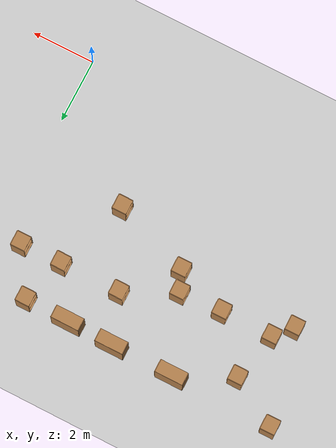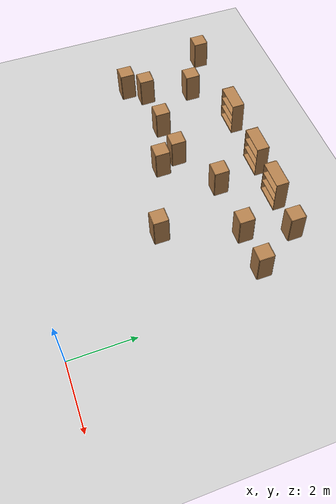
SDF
<sdf version="1.6">
 <world name="default">
  <model name="ground_plane">
   <static>1</static>
   <link name="link">
    <collision name="collision">
     <geometry><plane><normal>0 0 1</normal><size>100 100</size></plane></geometry>
     <surface><friction><ode><mu>100</mu><mu2>50</mu2></ode></friction></surface>
    </collision>
    <visual name="visual">
     <cast_shadows>0</cast_shadows>
     <geometry><plane><normal>0 0 1</normal><size>100 100</size></plane></geometry>
     <material>
      <script><uri>file://media/materials/scripts/gazebo.material</uri><name>Gazebo/Grey</name></script>
     </material>
    </visual>
   </link>
  </model>
  <model name="cabinet_46">
   <static>1</static>
   <link name="cabinet_bottom_plate">
    <inertial>
     <pose>0 0 -1 0 -0 0</pose>
     <inertia><ixx>2.05</ixx><ixy>0</ixy><ixz>0</ixz><iyy>2.05</iyy><iyz>0</iyz><izz>2.05</izz></inertia>
     <mass>25</mass>
    </inertial>
    <collision name="cabinet_bottom_plate_geom">
     <pose>0 0 0.01 0 -0 0</pose>
     <geometry><box><size>0.45 0.45 0.02</size></box></geometry>
    </collision>
    <visual name="cabinet_bottom_plate_geom_visual">
     <pose>0 0 0.01 0 -0 0</pose>
     <geometry><box><size>0.45 0.45 0.02</size></box></geometry>
     <material>
      <script><uri>file://media/materials/scripts/gazebo.material</uri><name>Gazebo/Wood</name></script>
     </material>
    </visual>
    <collision name="cabinet_bottom_plate_geom_cabinet_back_plate">
     <pose>0.235 0 0.51 0 -0 0</pose>
     <geometry><box><size>0.02 0.45 1.02</size></box></geometry>
    </collision>
    <visual name="cabinet_bottom_plate_geom_cabinet_back_plate_visual">
     <pose>0.235 0 0.51 0 -0 0</pose>
     <geometry><box><size>0.02 0.45 1.02</size></box></geometry>
     <material>
      <script><uri>file://media/materials/scripts/gazebo.material</uri><name>Gazebo/Wood</name></script>
     </material>
    </visual>
    <collision name="cabinet_bottom_plate_geom_cabinet_left_plate">
     <pose>0 0.235 0.51 0 -0 0</pose>
     <geometry><box><size>0.45 0.02 1.02</size></box></geometry>
    </collision>
    <visual name="cabinet_bottom_plate_geom_cabinet_left_plate_visual">
     <pose>0 0.235 0.51 0 -0 0</pose>
     <geometry><box><size>0.45 0.02 1.02</size></box></geometry>
     <material>
      <script><uri>file://media/materials/scripts/gazebo.material</uri><name>Gazebo/Wood</name></script>
     </material>
    </visual>
    <collision name="cabinet_bottom_plate_geom_cabinet_middle_plate">
     <pose>0 0 0.51 0 -0 0</pose>
     <geometry><box><size>0.45 0.45 0.02</size></box></geometry>
    </collision>
    <visual name="cabinet_bottom_plate_geom_cabinet_middle_plate_visual">
     <pose>0 0 0.51 0 -0 0</pose>
     <geometry><box><size>0.45 0.45 0.02</size></box></geometry>
     <material>
      <script><uri>file://media/materials/scripts/gazebo.material</uri><name>Gazebo/Wood</name></script>
     </material>
    </visual>
    <collision name="cabinet_bottom_plate_geom_cabinet_right_plate">
     <pose>0 -0.235 0.51 0 -0 0</pose>
     <geometry><box><size>0.45 0.02 1.02</size></box></geometry>
    </collision>
    <visual name="cabinet_bottom_plate_geom_cabinet_right_plate_visual">
     <pose>0 -0.235 0.51 0 -0 0</pose>
     <geometry><box><size>0.45 0.02 1.02</size></box></geometry>
     <material>
      <script><uri>file://media/materials/scripts/gazebo.material</uri><name>Gazebo/Wood</name></script>
     </material>
    </visual>
    <collision name="cabinet_bottom_plate_geom_cabinet_top_plate">
     <pose>0 0 1.01 0 -0 0</pose>
     <geometry><box><size>0.45 0.45 0.02</size></box></geometry>
    </collision>
    <visual name="cabinet_bottom_plate_geom_cabinet_top_plate_visual">
     <pose>0 0 1.01 0 -0 0</pose>
     <geometry><box><size>0.45 0.45 0.02</size></box></geometry>
     <material>
      <script><uri>file://media/materials/scripts/gazebo.material</uri><name>Gazebo/Wood</name></script>
     </material>
    </visual>
   </link>
   <pose>-9.03538 4.47961 0 0 -0 0</pose>
  </model>
  <model name="cabinet_48">
   <static>1</static>
   <link name="cabinet_bottom_plate">
    <inertial>
     <pose>0 0 -1 0 -0 0</pose>
     <inertia><ixx>2.05</ixx><ixy>0</ixy><ixz>0</ixz><iyy>2.05</iyy><iyz>0</iyz><izz>2.05</izz></inertia>
     <mass>25</mass>
    </inertial>
    <collision name="cabinet_bottom_plate_geom">
     <pose>0 0 0.01 0 -0 0</pose>
     <geometry><box><size>0.45 0.45 0.02</size></box></geometry>
    </collision>
    <visual name="cabinet_bottom_plate_geom_visual">
     <pose>0 0 0.01 0 -0 0</pose>
     <geometry><box><size>0.45 0.45 0.02</size></box></geometry>
     <material>
      <script><uri>file://media/materials/scripts/gazebo.material</uri><name>Gazebo/Wood</name></script>
     </material>
    </visual>
    <collision name="cabinet_bottom_plate_geom_cabinet_back_plate">
     <pose>0.235 0 0.51 0 -0 0</pose>
     <geometry><box><size>0.02 0.45 1.02</size></box></geometry>
    </collision>
    <visual name="cabinet_bottom_plate_geom_cabinet_back_plate_visual">
     <pose>0.235 0 0.51 0 -0 0</pose>
     <geometry><box><size>0.02 0.45 1.02</size></box></geometry>
     <material>
      <script><uri>file://media/materials/scripts/gazebo.material</uri><name>Gazebo/Wood</name></script>
     </material>
    </visual>
    <collision name="cabinet_bottom_plate_geom_cabinet_left_plate">
     <pose>0 0.235 0.51 0 -0 0</pose>
     <geometry><box><size>0.45 0.02 1.02</size></box></geometry>
    </collision>
    <visual name="cabinet_bottom_plate_geom_cabinet_left_plate_visual">
     <pose>0 0.235 0.51 0 -0 0</pose>
     <geometry><box><size>0.45 0.02 1.02</size></box></geometry>
     <material>
      <script><uri>file://media/materials/scripts/gazebo.material</uri><name>Gazebo/Wood</name></script>
     </material>
    </visual>
    <collision name="cabinet_bottom_plate_geom_cabinet_middle_plate">
     <pose>0 0 0.51 0 -0 0</pose>
     <geometry><box><size>0.45 0.45 0.02</size></box></geometry>
    </collision>
    <visual name="cabinet_bottom_plate_geom_cabinet_middle_plate_visual">
     <pose>0 0 0.51 0 -0 0</pose>
     <geometry><box><size>0.45 0.45 0.02</size></box></geometry>
     <material>
      <script><uri>file://media/materials/scripts/gazebo.material</uri><name>Gazebo/Wood</name></script>
     </material>
    </visual>
    <collision name="cabinet_bottom_plate_geom_cabinet_right_plate">
     <pose>0 -0.235 0.51 0 -0 0</pose>
     <geometry><box><size>0.45 0.02 1.02</size></box></geometry>
    </collision>
    <visual name="cabinet_bottom_plate_geom_cabinet_right_plate_visual">
     <pose>0 -0.235 0.51 0 -0 0</pose>
     <geometry><box><size>0.45 0.02 1.02</size></box></geometry>
     <material>
      <script><uri>file://media/materials/scripts/gazebo.material</uri><name>Gazebo/Wood</name></script>
     </material>
    </visual>
    <collision name="cabinet_bottom_plate_geom_cabinet_top_plate">
     <pose>0 0 1.01 0 -0 0</pose>
     <geometry><box><size>0.45 0.45 0.02</size></box></geometry>
    </collision>
    <visual name="cabinet_bottom_plate_geom_cabinet_top_plate_visual">
     <pose>0 0 1.01 0 -0 0</pose>
     <geometry><box><size>0.45 0.45 0.02</size></box></geometry>
     <material>
      <script><uri>file://media/materials/scripts/gazebo.material</uri><name>Gazebo/Wood</name></script>
     </material>
    </visual>
   </link>
   <pose>-5.28994 4.46564 0 0 -0 0</pose>
  </model>
  <model name="cabinet_49">
   <static>1</static>
   <link name="cabinet_bottom_plate">
    <inertial>
     <pose>0 0 -1 0 -0 0</pose>
     <inertia><ixx>2.05</ixx><ixy>0</ixy><ixz>0</ixz><iyy>2.05</iyy><iyz>0</iyz><izz>2.05</izz></inertia>
     <mass>25</mass>
    </inertial>
    <collision name="cabinet_bottom_plate_geom">
     <pose>0 0 0.01 0 -0 0</pose>
     <geometry><box><size>0.45 0.45 0.02</size></box></geometry>
    </collision>
    <visual name="cabinet_bottom_plate_geom_visual">
     <pose>0 0 0.01 0 -0 0</pose>
     <geometry><box><size>0.45 0.45 0.02</size></box></geometry>
     <material>
      <script><uri>file://media/materials/scripts/gazebo.material</uri><name>Gazebo/Wood</name></script>
     </material>
    </visual>
    <collision name="cabinet_bottom_plate_geom_cabinet_back_plate">
     <pose>0.235 0 0.51 0 -0 0</pose>
     <geometry><box><size>0.02 0.45 1.02</size></box></geometry>
    </collision>
    <visual name="cabinet_bottom_plate_geom_cabinet_back_plate_visual">
     <pose>0.235 0 0.51 0 -0 0</pose>
     <geometry><box><size>0.02 0.45 1.02</size></box></geometry>
     <material>
      <script><uri>file://media/materials/scripts/gazebo.material</uri><name>Gazebo/Wood</name></script>
     </material>
    </visual>
    <collision name="cabinet_bottom_plate_geom_cabinet_left_plate">
     <pose>0 0.235 0.51 0 -0 0</pose>
     <geometry><box><size>0.45 0.02 1.02</size></box></geometry>
    </collision>
    <visual name="cabinet_bottom_plate_geom_cabinet_left_plate_visual">
     <pose>0 0.235 0.51 0 -0 0</pose>
     <geometry><box><size>0.45 0.02 1.02</size></box></geometry>
     <material>
      <script><uri>file://media/materials/scripts/gazebo.material</uri><name>Gazebo/Wood</name></script>
     </material>
    </visual>
    <collision name="cabinet_bottom_plate_geom_cabinet_middle_plate">
     <pose>0 0 0.51 0 -0 0</pose>
     <geometry><box><size>0.45 0.45 0.02</size></box></geometry>
    </collision>
    <visual name="cabinet_bottom_plate_geom_cabinet_middle_plate_visual">
     <pose>0 0 0.51 0 -0 0</pose>
     <geometry><box><size>0.45 0.45 0.02</size></box></geometry>
     <material>
      <script><uri>file://media/materials/scripts/gazebo.material</uri><name>Gazebo/Wood</name></script>
     </material>
    </visual>
    <collision name="cabinet_bottom_plate_geom_cabinet_right_plate">
     <pose>0 -0.235 0.51 0 -0 0</pose>
     <geometry><box><size>0.45 0.02 1.02</size></box></geometry>
    </collision>
    <visual name="cabinet_bottom_plate_geom_cabinet_right_plate_visual">
     <pose>0 -0.235 0.51 0 -0 0</pose>
     <geometry><box><size>0.45 0.02 1.02</size></box></geometry>
     <material>
      <script><uri>file://media/materials/scripts/gazebo.material</uri><name>Gazebo/Wood</name></script>
     </material>
    </visual>
    <collision name="cabinet_bottom_plate_geom_cabinet_top_plate">
     <pose>0 0 1.01 0 -0 0</pose>
     <geometry><box><size>0.45 0.45 0.02</size></box></geometry>
    </collision>
    <visual name="cabinet_bottom_plate_geom_cabinet_top_plate_visual">
     <pose>0 0 1.01 0 -0 0</pose>
     <geometry><box><size>0.45 0.45 0.02</size></box></geometry>
     <material>
      <script><uri>file://media/materials/scripts/gazebo.material</uri><name>Gazebo/Wood</name></script>
     </material>
    </visual>
   </link>
   <pose>-2.89123 3.59711 0 0 -0 0</pose>
  </model>
  <model name="cabinet_59">
   <static>1</static>
   <link name="cabinet_bottom_plate">
    <inertial>
     <pose>0 0 -1 0 -0 0</pose>
     <inertia><ixx>2.05</ixx><ixy>0</ixy><ixz>0</ixz><iyy>2.05</iyy><iyz>0</iyz><izz>2.05</izz></inertia>
     <mass>25</mass>
    </inertial>
    <collision name="cabinet_bottom_plate_geom">
     <pose>0 0 0.01 0 -0 0</pose>
     <geometry><box><size>0.45 0.45 0.02</size></box></geometry>
    </collision>
    <visual name="cabinet_bottom_plate_geom_visual">
     <pose>0 0 0.01 0 -0 0</pose>
     <geometry><box><size>0.45 0.45 0.02</size></box></geometry>
     <material>
      <script><uri>file://media/materials/scripts/gazebo.material</uri><name>Gazebo/Wood</name></script>
     </material>
    </visual>
    <collision name="cabinet_bottom_plate_geom_cabinet_back_plate">
     <pose>0.235 0 0.51 0 -0 0</pose>
     <geometry><box><size>0.02 0.45 1.02</size></box></geometry>
    </collision>
    <visual name="cabinet_bottom_plate_geom_cabinet_back_plate_visual">
     <pose>0.235 0 0.51 0 -0 0</pose>
     <geometry><box><size>0.02 0.45 1.02</size></box></geometry>
     <material>
      <script><uri>file://media/materials/scripts/gazebo.material</uri><name>Gazebo/Wood</name></script>
     </material>
    </visual>
    <collision name="cabinet_bottom_plate_geom_cabinet_left_plate">
     <pose>0 0.235 0.51 0 -0 0</pose>
     <geometry><box><size>0.45 0.02 1.02</size></box></geometry>
    </collision>
    <visual name="cabinet_bottom_plate_geom_cabinet_left_plate_visual">
     <pose>0 0.235 0.51 0 -0 0</pose>
     <geometry><box><size>0.45 0.02 1.02</size></box></geometry>
     <material>
      <script><uri>file://media/materials/scripts/gazebo.material</uri><name>Gazebo/Wood</name></script>
     </material>
    </visual>
    <collision name="cabinet_bottom_plate_geom_cabinet_middle_plate">
     <pose>0 0 0.51 0 -0 0</pose>
     <geometry><box><size>0.45 0.45 0.02</size></box></geometry>
    </collision>
    <visual name="cabinet_bottom_plate_geom_cabinet_middle_plate_visual">
     <pose>0 0 0.51 0 -0 0</pose>
     <geometry><box><size>0.45 0.45 0.02</size></box></geometry>
     <material>
      <script><uri>file://media/materials/scripts/gazebo.material</uri><name>Gazebo/Wood</name></script>
     </material>
    </visual>
    <collision name="cabinet_bottom_plate_geom_cabinet_right_plate">
     <pose>0 -0.235 0.51 0 -0 0</pose>
     <geometry><box><size>0.45 0.02 1.02</size></box></geometry>
    </collision>
    <visual name="cabinet_bottom_plate_geom_cabinet_right_plate_visual">
     <pose>0 -0.235 0.51 0 -0 0</pose>
     <geometry><box><size>0.45 0.02 1.02</size></box></geometry>
     <material>
      <script><uri>file://media/materials/scripts/gazebo.material</uri><name>Gazebo/Wood</name></script>
     </material>
    </visual>
    <collision name="cabinet_bottom_plate_geom_cabinet_top_plate">
     <pose>0 0 1.01 0 -0 0</pose>
     <geometry><box><size>0.45 0.45 0.02</size></box></geometry>
    </collision>
    <visual name="cabinet_bottom_plate_geom_cabinet_top_plate_visual">
     <pose>0 0 1.01 0 -0 0</pose>
     <geometry><box><size>0.45 0.45 0.02</size></box></geometry>
     <material>
      <script><uri>file://media/materials/scripts/gazebo.material</uri><name>Gazebo/Wood</name></script>
     </material>
    </visual>
   </link>
   <pose>-0.741081 5.93621 0 0 -0 0</pose>
  </model>
  <model name="cabinet_60">
   <static>1</static>
   <link name="cabinet_bottom_plate">
    <inertial>
     <pose>0 0 -1 0 -0 0</pose>
     <inertia><ixx>2.05</ixx><ixy>0</ixy><ixz>0</ixz><iyy>2.05</iyy><iyz>0</iyz><izz>2.05</izz></inertia>
     <mass>25</mass>
    </inertial>
    <collision name="cabinet_bottom_plate_geom">
     <pose>0 0 0.01 0 -0 0</pose>
     <geometry><box><size>0.45 0.45 0.02</size></box></geometry>
    </collision>
    <visual name="cabinet_bottom_plate_geom_visual">
     <pose>0 0 0.01 0 -0 0</pose>
     <geometry><box><size>0.45 0.45 0.02</size></box></geometry>
     <material>
      <script><uri>file://media/materials/scripts/gazebo.material</uri><name>Gazebo/Wood</name></script>
     </material>
    </visual>
    <collision name="cabinet_bottom_plate_geom_cabinet_back_plate">
     <pose>0.235 0 0.51 0 -0 0</pose>
     <geometry><box><size>0.02 0.45 1.02</size></box></geometry>
    </collision>
    <visual name="cabinet_bottom_plate_geom_cabinet_back_plate_visual">
     <pose>0.235 0 0.51 0 -0 0</pose>
     <geometry><box><size>0.02 0.45 1.02</size></box></geometry>
     <material>
      <script><uri>file://media/materials/scripts/gazebo.material</uri><name>Gazebo/Wood</name></script>
     </material>
    </visual>
    <collision name="cabinet_bottom_plate_geom_cabinet_left_plate">
     <pose>0 0.235 0.51 0 -0 0</pose>
     <geometry><box><size>0.45 0.02 1.02</size></box></geometry>
    </collision>
    <visual name="cabinet_bottom_plate_geom_cabinet_left_plate_visual">
     <pose>0 0.235 0.51 0 -0 0</pose>
     <geometry><box><size>0.45 0.02 1.02</size></box></geometry>
     <material>
      <script><uri>file://media/materials/scripts/gazebo.material</uri><name>Gazebo/Wood</name></script>
     </material>
    </visual>
    <collision name="cabinet_bottom_plate_geom_cabinet_middle_plate">
     <pose>0 0 0.51 0 -0 0</pose>
     <geometry><box><size>0.45 0.45 0.02</size></box></geometry>
    </collision>
    <visual name="cabinet_bottom_plate_geom_cabinet_middle_plate_visual">
     <pose>0 0 0.51 0 -0 0</pose>
     <geometry><box><size>0.45 0.45 0.02</size></box></geometry>
     <material>
      <script><uri>file://media/materials/scripts/gazebo.material</uri><name>Gazebo/Wood</name></script>
     </material>
    </visual>
    <collision name="cabinet_bottom_plate_geom_cabinet_right_plate">
     <pose>0 -0.235 0.51 0 -0 0</pose>
     <geometry><box><size>0.45 0.02 1.02</size></box></geometry>
    </collision>
    <visual name="cabinet_bottom_plate_geom_cabinet_right_plate_visual">
     <pose>0 -0.235 0.51 0 -0 0</pose>
     <geometry><box><size>0.45 0.02 1.02</size></box></geometry>
     <material>
      <script><uri>file://media/materials/scripts/gazebo.material</uri><name>Gazebo/Wood</name></script>
     </material>
    </visual>
    <collision name="cabinet_bottom_plate_geom_cabinet_top_plate">
     <pose>0 0 1.01 0 -0 0</pose>
     <geometry><box><size>0.45 0.45 0.02</size></box></geometry>
    </collision>
    <visual name="cabinet_bottom_plate_geom_cabinet_top_plate_visual">
     <pose>0 0 1.01 0 -0 0</pose>
     <geometry><box><size>0.45 0.45 0.02</size></box></geometry>
     <material>
      <script><uri>file://media/materials/scripts/gazebo.material</uri><name>Gazebo/Wood</name></script>
     </material>
    </visual>
   </link>
   <pose>-2.06013 5.92385 0 0 -0 0</pose>
  </model>
  <model name="cabinet_61">
   <static>1</static>
   <link name="cabinet_bottom_plate">
    <inertial>
     <pose>0 0 -1 0 -0 0</pose>
     <inertia><ixx>2.05</ixx><ixy>0</ixy><ixz>0</ixz><iyy>2.05</iyy><iyz>0</iyz><izz>2.05</izz></inertia>
     <mass>25</mass>
    </inertial>
    <collision name="cabinet_bottom_plate_geom">
     <pose>0 0 0.01 0 -0 0</pose>
     <geometry><box><size>0.45 0.45 0.02</size></box></geometry>
    </collision>
    <visual name="cabinet_bottom_plate_geom_visual">
     <pose>0 0 0.01 0 -0 0</pose>
     <geometry><box><size>0.45 0.45 0.02</size></box></geometry>
     <material>
      <script><uri>file://media/materials/scripts/gazebo.material</uri><name>Gazebo/Wood</name></script>
     </material>
    </visual>
    <collision name="cabinet_bottom_plate_geom_cabinet_back_plate">
     <pose>0.235 0 0.51 0 -0 0</pose>
     <geometry><box><size>0.02 0.45 1.02</size></box></geometry>
    </collision>
    <visual name="cabinet_bottom_plate_geom_cabinet_back_plate_visual">
     <pose>0.235 0 0.51 0 -0 0</pose>
     <geometry><box><size>0.02 0.45 1.02</size></box></geometry>
     <material>
      <script><uri>file://media/materials/scripts/gazebo.material</uri><name>Gazebo/Wood</name></script>
     </material>
    </visual>
    <collision name="cabinet_bottom_plate_geom_cabinet_left_plate">
     <pose>0 0.235 0.51 0 -0 0</pose>
     <geometry><box><size>0.45 0.02 1.02</size></box></geometry>
    </collision>
    <visual name="cabinet_bottom_plate_geom_cabinet_left_plate_visual">
     <pose>0 0.235 0.51 0 -0 0</pose>
     <geometry><box><size>0.45 0.02 1.02</size></box></geometry>
     <material>
      <script><uri>file://media/materials/scripts/gazebo.material</uri><name>Gazebo/Wood</name></script>
     </material>
    </visual>
    <collision name="cabinet_bottom_plate_geom_cabinet_middle_plate">
     <pose>0 0 0.51 0 -0 0</pose>
     <geometry><box><size>0.45 0.45 0.02</size></box></geometry>
    </collision>
    <visual name="cabinet_bottom_plate_geom_cabinet_middle_plate_visual">
     <pose>0 0 0.51 0 -0 0</pose>
     <geometry><box><size>0.45 0.45 0.02</size></box></geometry>
     <material>
      <script><uri>file://media/materials/scripts/gazebo.material</uri><name>Gazebo/Wood</name></script>
     </material>
    </visual>
    <collision name="cabinet_bottom_plate_geom_cabinet_right_plate">
     <pose>0 -0.235 0.51 0 -0 0</pose>
     <geometry><box><size>0.45 0.02 1.02</size></box></geometry>
    </collision>
    <visual name="cabinet_bottom_plate_geom_cabinet_right_plate_visual">
     <pose>0 -0.235 0.51 0 -0 0</pose>
     <geometry><box><size>0.45 0.02 1.02</size></box></geometry>
     <material>
      <script><uri>file://media/materials/scripts/gazebo.material</uri><name>Gazebo/Wood</name></script>
     </material>
    </visual>
    <collision name="cabinet_bottom_plate_geom_cabinet_top_plate">
     <pose>0 0 1.01 0 -0 0</pose>
     <geometry><box><size>0.45 0.45 0.02</size></box></geometry>
    </collision>
    <visual name="cabinet_bottom_plate_geom_cabinet_top_plate_visual">
     <pose>0 0 1.01 0 -0 0</pose>
     <geometry><box><size>0.45 0.45 0.02</size></box></geometry>
     <material>
      <script><uri>file://media/materials/scripts/gazebo.material</uri><name>Gazebo/Wood</name></script>
     </material>
    </visual>
   </link>
   <pose>-3.96704 5.90797 0 0 -0 0</pose>
  </model>
  <model name="cabinet_62">
   <static>1</static>
   <link name="cabinet_bottom_plate">
    <inertial>
     <pose>0 0 -1 0 -0 0</pose>
     <inertia><ixx>2.05</ixx><ixy>0</ixy><ixz>0</ixz><iyy>2.05</iyy><iyz>0</iyz><izz>2.05</izz></inertia>
     <mass>25</mass>
    </inertial>
    <collision name="cabinet_bottom_plate_geom">
     <pose>0 0 0.01 0 -0 0</pose>
     <geometry><box><size>0.45 0.45 0.02</size></box></geometry>
    </collision>
    <visual name="cabinet_bottom_plate_geom_visual">
     <pose>0 0 0.01 0 -0 0</pose>
     <geometry><box><size>0.45 0.45 0.02</size></box></geometry>
     <material>
      <script><uri>file://media/materials/scripts/gazebo.material</uri><name>Gazebo/Wood</name></script>
     </material>
    </visual>
    <collision name="cabinet_bottom_plate_geom_cabinet_back_plate">
     <pose>0.235 0 0.51 0 -0 0</pose>
     <geometry><box><size>0.02 0.45 1.02</size></box></geometry>
    </collision>
    <visual name="cabinet_bottom_plate_geom_cabinet_back_plate_visual">
     <pose>0.235 0 0.51 0 -0 0</pose>
     <geometry><box><size>0.02 0.45 1.02</size></box></geometry>
     <material>
      <script><uri>file://media/materials/scripts/gazebo.material</uri><name>Gazebo/Wood</name></script>
     </material>
    </visual>
    <collision name="cabinet_bottom_plate_geom_cabinet_left_plate">
     <pose>0 0.235 0.51 0 -0 0</pose>
     <geometry><box><size>0.45 0.02 1.02</size></box></geometry>
    </collision>
    <visual name="cabinet_bottom_plate_geom_cabinet_left_plate_visual">
     <pose>0 0.235 0.51 0 -0 0</pose>
     <geometry><box><size>0.45 0.02 1.02</size></box></geometry>
     <material>
      <script><uri>file://media/materials/scripts/gazebo.material</uri><name>Gazebo/Wood</name></script>
     </material>
    </visual>
    <collision name="cabinet_bottom_plate_geom_cabinet_middle_plate">
     <pose>0 0 0.51 0 -0 0</pose>
     <geometry><box><size>0.45 0.45 0.02</size></box></geometry>
    </collision>
    <visual name="cabinet_bottom_plate_geom_cabinet_middle_plate_visual">
     <pose>0 0 0.51 0 -0 0</pose>
     <geometry><box><size>0.45 0.45 0.02</size></box></geometry>
     <material>
      <script><uri>file://media/materials/scripts/gazebo.material</uri><name>Gazebo/Wood</name></script>
     </material>
    </visual>
    <collision name="cabinet_bottom_plate_geom_cabinet_right_plate">
     <pose>0 -0.235 0.51 0 -0 0</pose>
     <geometry><box><size>0.45 0.02 1.02</size></box></geometry>
    </collision>
    <visual name="cabinet_bottom_plate_geom_cabinet_right_plate_visual">
     <pose>0 -0.235 0.51 0 -0 0</pose>
     <geometry><box><size>0.45 0.02 1.02</size></box></geometry>
     <material>
      <script><uri>file://media/materials/scripts/gazebo.material</uri><name>Gazebo/Wood</name></script>
     </material>
    </visual>
    <collision name="cabinet_bottom_plate_geom_cabinet_top_plate">
     <pose>0 0 1.01 0 -0 0</pose>
     <geometry><box><size>0.45 0.45 0.02</size></box></geometry>
    </collision>
    <visual name="cabinet_bottom_plate_geom_cabinet_top_plate_visual">
     <pose>0 0 1.01 0 -0 0</pose>
     <geometry><box><size>0.45 0.45 0.02</size></box></geometry>
     <material>
      <script><uri>file://media/materials/scripts/gazebo.material</uri><name>Gazebo/Wood</name></script>
     </material>
    </visual>
   </link>
   <pose>-5.55678 5.08488 0 0 -0 0</pose>
  </model>
  <model name="cabinet_63">
   <static>1</static>
   <link name="cabinet_bottom_plate">
    <inertial>
     <pose>0 0 -1 0 -0 0</pose>
     <inertia><ixx>2.05</ixx><ixy>0</ixy><ixz>0</ixz><iyy>2.05</iyy><iyz>0</iyz><izz>2.05</izz></inertia>
     <mass>25</mass>
    </inertial>
    <collision name="cabinet_bottom_plate_geom">
     <pose>0 0 0.01 0 -0 0</pose>
     <geometry><box><size>0.45 0.45 0.02</size></box></geometry>
    </collision>
    <visual name="cabinet_bottom_plate_geom_visual">
     <pose>0 0 0.01 0 -0 0</pose>
     <geometry><box><size>0.45 0.45 0.02</size></box></geometry>
     <material>
      <script><uri>file://media/materials/scripts/gazebo.material</uri><name>Gazebo/Wood</name></script>
     </material>
    </visual>
    <collision name="cabinet_bottom_plate_geom_cabinet_back_plate">
     <pose>0.235 0 0.51 0 -0 0</pose>
     <geometry><box><size>0.02 0.45 1.02</size></box></geometry>
    </collision>
    <visual name="cabinet_bottom_plate_geom_cabinet_back_plate_visual">
     <pose>0.235 0 0.51 0 -0 0</pose>
     <geometry><box><size>0.02 0.45 1.02</size></box></geometry>
     <material>
      <script><uri>file://media/materials/scripts/gazebo.material</uri><name>Gazebo/Wood</name></script>
     </material>
    </visual>
    <collision name="cabinet_bottom_plate_geom_cabinet_left_plate">
     <pose>0 0.235 0.51 0 -0 0</pose>
     <geometry><box><size>0.45 0.02 1.02</size></box></geometry>
    </collision>
    <visual name="cabinet_bottom_plate_geom_cabinet_left_plate_visual">
     <pose>0 0.235 0.51 0 -0 0</pose>
     <geometry><box><size>0.45 0.02 1.02</size></box></geometry>
     <material>
      <script><uri>file://media/materials/scripts/gazebo.material</uri><name>Gazebo/Wood</name></script>
     </material>
    </visual>
    <collision name="cabinet_bottom_plate_geom_cabinet_middle_plate">
     <pose>0 0 0.51 0 -0 0</pose>
     <geometry><box><size>0.45 0.45 0.02</size></box></geometry>
    </collision>
    <visual name="cabinet_bottom_plate_geom_cabinet_middle_plate_visual">
     <pose>0 0 0.51 0 -0 0</pose>
     <geometry><box><size>0.45 0.45 0.02</size></box></geometry>
     <material>
      <script><uri>file://media/materials/scripts/gazebo.material</uri><name>Gazebo/Wood</name></script>
     </material>
    </visual>
    <collision name="cabinet_bottom_plate_geom_cabinet_right_plate">
     <pose>0 -0.235 0.51 0 -0 0</pose>
     <geometry><box><size>0.45 0.02 1.02</size></box></geometry>
    </collision>
    <visual name="cabinet_bottom_plate_geom_cabinet_right_plate_visual">
     <pose>0 -0.235 0.51 0 -0 0</pose>
     <geometry><box><size>0.45 0.02 1.02</size></box></geometry>
     <material>
      <script><uri>file://media/materials/scripts/gazebo.material</uri><name>Gazebo/Wood</name></script>
     </material>
    </visual>
    <collision name="cabinet_bottom_plate_geom_cabinet_top_plate">
     <pose>0 0 1.01 0 -0 0</pose>
     <geometry><box><size>0.45 0.45 0.02</size></box></geometry>
    </collision>
    <visual name="cabinet_bottom_plate_geom_cabinet_top_plate_visual">
     <pose>0 0 1.01 0 -0 0</pose>
     <geometry><box><size>0.45 0.45 0.02</size></box></geometry>
     <material>
      <script><uri>file://media/materials/scripts/gazebo.material</uri><name>Gazebo/Wood</name></script>
     </material>
    </visual>
   </link>
   <pose>-6.91325 5.03046 0 0 -0 0</pose>
  </model>
  <model name="cabinet_64">
   <static>1</static>
   <link name="cabinet_bottom_plate">
    <inertial>
     <pose>0 0 -1 0 -0 0</pose>
     <inertia><ixx>2.05</ixx><ixy>0</ixy><ixz>0</ixz><iyy>2.05</iyy><iyz>0</iyz><izz>2.05</izz></inertia>
     <mass>25</mass>
    </inertial>
    <collision name="cabinet_bottom_plate_geom">
     <pose>0 0 0.01 0 -0 0</pose>
     <geometry><box><size>0.45 0.45 0.02</size></box></geometry>
    </collision>
    <visual name="cabinet_bottom_plate_geom_visual">
     <pose>0 0 0.01 0 -0 0</pose>
     <geometry><box><size>0.45 0.45 0.02</size></box></geometry>
     <material>
      <script><uri>file://media/materials/scripts/gazebo.material</uri><name>Gazebo/Wood</name></script>
     </material>
    </visual>
    <collision name="cabinet_bottom_plate_geom_cabinet_back_plate">
     <pose>0.235 0 0.51 0 -0 0</pose>
     <geometry><box><size>0.02 0.45 1.02</size></box></geometry>
    </collision>
    <visual name="cabinet_bottom_plate_geom_cabinet_back_plate_visual">
     <pose>0.235 0 0.51 0 -0 0</pose>
     <geometry><box><size>0.02 0.45 1.02</size></box></geometry>
     <material>
      <script><uri>file://media/materials/scripts/gazebo.material</uri><name>Gazebo/Wood</name></script>
     </material>
    </visual>
    <collision name="cabinet_bottom_plate_geom_cabinet_left_plate">
     <pose>0 0.235 0.51 0 -0 0</pose>
     <geometry><box><size>0.45 0.02 1.02</size></box></geometry>
    </collision>
    <visual name="cabinet_bottom_plate_geom_cabinet_left_plate_visual">
     <pose>0 0.235 0.51 0 -0 0</pose>
     <geometry><box><size>0.45 0.02 1.02</size></box></geometry>
     <material>
      <script><uri>file://media/materials/scripts/gazebo.material</uri><name>Gazebo/Wood</name></script>
     </material>
    </visual>
    <collision name="cabinet_bottom_plate_geom_cabinet_middle_plate">
     <pose>0 0 0.51 0 -0 0</pose>
     <geometry><box><size>0.45 0.45 0.02</size></box></geometry>
    </collision>
    <visual name="cabinet_bottom_plate_geom_cabinet_middle_plate_visual">
     <pose>0 0 0.51 0 -0 0</pose>
     <geometry><box><size>0.45 0.45 0.02</size></box></geometry>
     <material>
      <script><uri>file://media/materials/scripts/gazebo.material</uri><name>Gazebo/Wood</name></script>
     </material>
    </visual>
    <collision name="cabinet_bottom_plate_geom_cabinet_right_plate">
     <pose>0 -0.235 0.51 0 -0 0</pose>
     <geometry><box><size>0.45 0.02 1.02</size></box></geometry>
    </collision>
    <visual name="cabinet_bottom_plate_geom_cabinet_right_plate_visual">
     <pose>0 -0.235 0.51 0 -0 0</pose>
     <geometry><box><size>0.45 0.02 1.02</size></box></geometry>
     <material>
      <script><uri>file://media/materials/scripts/gazebo.material</uri><name>Gazebo/Wood</name></script>
     </material>
    </visual>
    <collision name="cabinet_bottom_plate_geom_cabinet_top_plate">
     <pose>0 0 1.01 0 -0 0</pose>
     <geometry><box><size>0.45 0.45 0.02</size></box></geometry>
    </collision>
    <visual name="cabinet_bottom_plate_geom_cabinet_top_plate_visual">
     <pose>0 0 1.01 0 -0 0</pose>
     <geometry><box><size>0.45 0.45 0.02</size></box></geometry>
     <material>
      <script><uri>file://media/materials/scripts/gazebo.material</uri><name>Gazebo/Wood</name></script>
     </material>
    </visual>
   </link>
   <pose>-8.54999 5.01776 0 0 -0 0</pose>
  </model>
  <model name="cabinet_65">
   <static>1</static>
   <link name="cabinet_bottom_plate">
    <inertial>
     <pose>0 0 -1 0 -0 0</pose>
     <inertia><ixx>2.05</ixx><ixy>0</ixy><ixz>0</ixz><iyy>2.05</iyy><iyz>0</iyz><izz>2.05</izz></inertia>
     <mass>25</mass>
    </inertial>
    <collision name="cabinet_bottom_plate_geom">
     <pose>0 0 0.01 0 -0 0</pose>
     <geometry><box><size>0.45 0.45 0.02</size></box></geometry>
    </collision>
    <visual name="cabinet_bottom_plate_geom_visual">
     <pose>0 0 0.01 0 -0 0</pose>
     <geometry><box><size>0.45 0.45 0.02</size></box></geometry>
     <material>
      <script><uri>file://media/materials/scripts/gazebo.material</uri><name>Gazebo/Wood</name></script>
     </material>
    </visual>
    <collision name="cabinet_bottom_plate_geom_cabinet_back_plate">
     <pose>0.235 0 0.51 0 -0 0</pose>
     <geometry><box><size>0.02 0.45 1.02</size></box></geometry>
    </collision>
    <visual name="cabinet_bottom_plate_geom_cabinet_back_plate_visual">
     <pose>0.235 0 0.51 0 -0 0</pose>
     <geometry><box><size>0.02 0.45 1.02</size></box></geometry>
     <material>
      <script><uri>file://media/materials/scripts/gazebo.material</uri><name>Gazebo/Wood</name></script>
     </material>
    </visual>
    <collision name="cabinet_bottom_plate_geom_cabinet_left_plate">
     <pose>0 0.235 0.51 0 -0 0</pose>
     <geometry><box><size>0.45 0.02 1.02</size></box></geometry>
    </collision>
    <visual name="cabinet_bottom_plate_geom_cabinet_left_plate_visual">
     <pose>0 0.235 0.51 0 -0 0</pose>
     <geometry><box><size>0.45 0.02 1.02</size></box></geometry>
     <material>
      <script><uri>file://media/materials/scripts/gazebo.material</uri><name>Gazebo/Wood</name></script>
     </material>
    </visual>
    <collision name="cabinet_bottom_plate_geom_cabinet_middle_plate">
     <pose>0 0 0.51 0 -0 0</pose>
     <geometry><box><size>0.45 0.45 0.02</size></box></geometry>
    </collision>
    <visual name="cabinet_bottom_plate_geom_cabinet_middle_plate_visual">
     <pose>0 0 0.51 0 -0 0</pose>
     <geometry><box><size>0.45 0.45 0.02</size></box></geometry>
     <material>
      <script><uri>file://media/materials/scripts/gazebo.material</uri><name>Gazebo/Wood</name></script>
     </material>
    </visual>
    <collision name="cabinet_bottom_plate_geom_cabinet_right_plate">
     <pose>0 -0.235 0.51 0 -0 0</pose>
     <geometry><box><size>0.45 0.02 1.02</size></box></geometry>
    </collision>
    <visual name="cabinet_bottom_plate_geom_cabinet_right_plate_visual">
     <pose>0 -0.235 0.51 0 -0 0</pose>
     <geometry><box><size>0.45 0.02 1.02</size></box></geometry>
     <material>
      <script><uri>file://media/materials/scripts/gazebo.material</uri><name>Gazebo/Wood</name></script>
     </material>
    </visual>
    <collision name="cabinet_bottom_plate_geom_cabinet_top_plate">
     <pose>0 0 1.01 0 -0 0</pose>
     <geometry><box><size>0.45 0.45 0.02</size></box></geometry>
    </collision>
    <visual name="cabinet_bottom_plate_geom_cabinet_top_plate_visual">
     <pose>0 0 1.01 0 -0 0</pose>
     <geometry><box><size>0.45 0.45 0.02</size></box></geometry>
     <material>
      <script><uri>file://media/materials/scripts/gazebo.material</uri><name>Gazebo/Wood</name></script>
     </material>
    </visual>
   </link>
   <pose>-9.71279 7.41749 0 0 -0 0</pose>
  </model>
  <model name="cabinet_66">
   <static>1</static>
   <link name="cabinet_bottom_plate">
    <inertial>
     <pose>0 0 -1 0 -0 0</pose>
     <inertia><ixx>2.05</ixx><ixy>0</ixy><ixz>0</ixz><iyy>2.05</iyy><iyz>0</iyz><izz>2.05</izz></inertia>
     <mass>25</mass>
    </inertial>
    <collision name="cabinet_bottom_plate_geom">
     <pose>0 0 0.01 0 -0 0</pose>
     <geometry><box><size>0.45 0.45 0.02</size></box></geometry>
    </collision>
    <visual name="cabinet_bottom_plate_geom_visual">
     <pose>0 0 0.01 0 -0 0</pose>
     <geometry><box><size>0.45 0.45 0.02</size></box></geometry>
     <material>
      <script><uri>file://media/materials/scripts/gazebo.material</uri><name>Gazebo/Wood</name></script>
     </material>
    </visual>
    <collision name="cabinet_bottom_plate_geom_cabinet_back_plate">
     <pose>0.235 0 0.51 0 -0 0</pose>
     <geometry><box><size>0.02 0.45 1.02</size></box></geometry>
    </collision>
    <visual name="cabinet_bottom_plate_geom_cabinet_back_plate_visual">
     <pose>0.235 0 0.51 0 -0 0</pose>
     <geometry><box><size>0.02 0.45 1.02</size></box></geometry>
     <material>
      <script><uri>file://media/materials/scripts/gazebo.material</uri><name>Gazebo/Wood</name></script>
     </material>
    </visual>
    <collision name="cabinet_bottom_plate_geom_cabinet_left_plate">
     <pose>0 0.235 0.51 0 -0 0</pose>
     <geometry><box><size>0.45 0.02 1.02</size></box></geometry>
    </collision>
    <visual name="cabinet_bottom_plate_geom_cabinet_left_plate_visual">
     <pose>0 0.235 0.51 0 -0 0</pose>
     <geometry><box><size>0.45 0.02 1.02</size></box></geometry>
     <material>
      <script><uri>file://media/materials/scripts/gazebo.material</uri><name>Gazebo/Wood</name></script>
     </material>
    </visual>
    <collision name="cabinet_bottom_plate_geom_cabinet_middle_plate">
     <pose>0 0 0.51 0 -0 0</pose>
     <geometry><box><size>0.45 0.45 0.02</size></box></geometry>
    </collision>
    <visual name="cabinet_bottom_plate_geom_cabinet_middle_plate_visual">
     <pose>0 0 0.51 0 -0 0</pose>
     <geometry><box><size>0.45 0.45 0.02</size></box></geometry>
     <material>
      <script><uri>file://media/materials/scripts/gazebo.material</uri><name>Gazebo/Wood</name></script>
     </material>
    </visual>
    <collision name="cabinet_bottom_plate_geom_cabinet_right_plate">
     <pose>0 -0.235 0.51 0 -0 0</pose>
     <geometry><box><size>0.45 0.02 1.02</size></box></geometry>
    </collision>
    <visual name="cabinet_bottom_plate_geom_cabinet_right_plate_visual">
     <pose>0 -0.235 0.51 0 -0 0</pose>
     <geometry><box><size>0.45 0.02 1.02</size></box></geometry>
     <material>
      <script><uri>file://media/materials/scripts/gazebo.material</uri><name>Gazebo/Wood</name></script>
     </material>
    </visual>
    <collision name="cabinet_bottom_plate_geom_cabinet_top_plate">
     <pose>0 0 1.01 0 -0 0</pose>
     <geometry><box><size>0.45 0.45 0.02</size></box></geometry>
    </collision>
    <visual name="cabinet_bottom_plate_geom_cabinet_top_plate_visual">
     <pose>0 0 1.01 0 -0 0</pose>
     <geometry><box><size>0.45 0.45 0.02</size></box></geometry>
     <material>
      <script><uri>file://media/materials/scripts/gazebo.material</uri><name>Gazebo/Wood</name></script>
     </material>
    </visual>
   </link>
   <pose>-8.21194 6.5529 0 0 -0 0</pose>
  </model>
  <model name="bookshelf_8">
   <static>1</static>
   <link name="link">
    <inertial><mass>1</mass></inertial>
    <collision name="back">
     <pose>0 0.005 0.6 0 -0 0</pose>
     <geometry><box><size>0.9 0.01 1.2</size></box></geometry>
    </collision>
    <visual name="visual1">
     <pose>0 0.005 0.6 0 -0 0</pose>
     <geometry><box><size>0.9 0.01 1.2</size></box></geometry>
     <material>
      <script><uri>file://media/materials/scripts/gazebo.material</uri><name>Gazebo/Wood</name></script>
     </material>
    </visual>
    <collision name="left_side">
     <pose>0.45 -0.195 0.6 0 -0 0</pose>
     <geometry><box><size>0.02 0.4 1.2</size></box></geometry>
    </collision>
    <visual name="visual2">
     <pose>0.45 -0.195 0.6 0 -0 0</pose>
     <geometry><box><size>0.02 0.4 1.2</size></box></geometry>
     <material>
      <script><uri>file://media/materials/scripts/gazebo.material</uri><name>Gazebo/Wood</name></script>
     </material>
    </visual>
    <collision name="right_side">
     <pose>-0.45 -0.195 0.6 0 -0 0</pose>
     <geometry><box><size>0.02 0.4 1.2</size></box></geometry>
    </collision>
    <visual name="visual3">
     <pose>-0.45 -0.195 0.6 0 -0 0</pose>
     <geometry><box><size>0.02 0.4 1.2</size></box></geometry>
     <material>
      <script><uri>file://media/materials/scripts/gazebo.material</uri><name>Gazebo/Wood</name></script>
     </material>
    </visual>
    <collision name="bottom">
     <pose>0 -0.195 0.03 0 -0 0</pose>
     <geometry><box><size>0.88 0.4 0.06</size></box></geometry>
    </collision>
    <visual name="visual4">
     <pose>0 -0.195 0.03 0 -0 0</pose>
     <geometry><box><size>0.88 0.4 0.06</size></box></geometry>
     <material>
      <script><uri>file://media/materials/scripts/gazebo.material</uri><name>Gazebo/Wood</name></script>
     </material>
    </visual>
    <collision name="top">
     <pose>0 -0.195 1.19 0 -0 0</pose>
     <geometry><box><size>0.88 0.4 0.02</size></box></geometry>
    </collision>
    <visual name="visual5">
     <pose>0 -0.195 1.19 0 -0 0</pose>
     <geometry><box><size>0.88 0.4 0.02</size></box></geometry>
     <material>
      <script><uri>file://media/materials/scripts/gazebo.material</uri><name>Gazebo/Wood</name></script>
     </material>
    </visual>
    <collision name="low_shelf">
     <pose>0 -0.195 0.43 0 -0 0</pose>
     <geometry><box><size>0.88 0.4 0.02</size></box></geometry>
    </collision>
    <visual name="visual6">
     <pose>0 -0.195 0.43 0 -0 0</pose>
     <geometry><box><size>0.88 0.4 0.02</size></box></geometry>
     <material>
      <script><uri>file://media/materials/scripts/gazebo.material</uri><name>Gazebo/Wood</name></script>
     </material>
    </visual>
    <collision name="high_shelf">
     <pose>0 -0.195 0.8 0 -0 0</pose>
     <geometry><box><size>0.88 0.4 0.02</size></box></geometry>
    </collision>
    <visual name="visual7">
     <pose>0 -0.195 0.8 0 -0 0</pose>
     <geometry><box><size>0.88 0.4 0.02</size></box></geometry>
     <material>
      <script><uri>file://media/materials/scripts/gazebo.material</uri><name>Gazebo/Wood</name></script>
     </material>
    </visual>
   </link>
   <pose>-6.46249 7.58516 0 0 -0 0</pose>
  </model>
  <model name="bookshelf_9">
   <static>1</static>
   <link name="link">
    <inertial><mass>1</mass></inertial>
    <collision name="back">
     <pose>0 0.005 0.6 0 -0 0</pose>
     <geometry><box><size>0.9 0.01 1.2</size></box></geometry>
    </collision>
    <visual name="visual1">
     <pose>0 0.005 0.6 0 -0 0</pose>
     <geometry><box><size>0.9 0.01 1.2</size></box></geometry>
     <material>
      <script><uri>file://media/materials/scripts/gazebo.material</uri><name>Gazebo/Wood</name></script>
     </material>
    </visual>
    <collision name="left_side">
     <pose>0.45 -0.195 0.6 0 -0 0</pose>
     <geometry><box><size>0.02 0.4 1.2</size></box></geometry>
    </collision>
    <visual name="visual2">
     <pose>0.45 -0.195 0.6 0 -0 0</pose>
     <geometry><box><size>0.02 0.4 1.2</size></box></geometry>
     <material>
      <script><uri>file://media/materials/scripts/gazebo.material</uri><name>Gazebo/Wood</name></script>
     </material>
    </visual>
    <collision name="right_side">
     <pose>-0.45 -0.195 0.6 0 -0 0</pose>
     <geometry><box><size>0.02 0.4 1.2</size></box></geometry>
    </collision>
    <visual name="visual3">
     <pose>-0.45 -0.195 0.6 0 -0 0</pose>
     <geometry><box><size>0.02 0.4 1.2</size></box></geometry>
     <material>
      <script><uri>file://media/materials/scripts/gazebo.material</uri><name>Gazebo/Wood</name></script>
     </material>
    </visual>
    <collision name="bottom">
     <pose>0 -0.195 0.03 0 -0 0</pose>
     <geometry><box><size>0.88 0.4 0.06</size></box></geometry>
    </collision>
    <visual name="visual4">
     <pose>0 -0.195 0.03 0 -0 0</pose>
     <geometry><box><size>0.88 0.4 0.06</size></box></geometry>
     <material>
      <script><uri>file://media/materials/scripts/gazebo.material</uri><name>Gazebo/Wood</name></script>
     </material>
    </visual>
    <collision name="top">
     <pose>0 -0.195 1.19 0 -0 0</pose>
     <geometry><box><size>0.88 0.4 0.02</size></box></geometry>
    </collision>
    <visual name="visual5">
     <pose>0 -0.195 1.19 0 -0 0</pose>
     <geometry><box><size>0.88 0.4 0.02</size></box></geometry>
     <material>
      <script><uri>file://media/materials/scripts/gazebo.material</uri><name>Gazebo/Wood</name></script>
     </material>
    </visual>
    <collision name="low_shelf">
     <pose>0 -0.195 0.43 0 -0 0</pose>
     <geometry><box><size>0.88 0.4 0.02</size></box></geometry>
    </collision>
    <visual name="visual6">
     <pose>0 -0.195 0.43 0 -0 0</pose>
     <geometry><box><size>0.88 0.4 0.02</size></box></geometry>
     <material>
      <script><uri>file://media/materials/scripts/gazebo.material</uri><name>Gazebo/Wood</name></script>
     </material>
    </visual>
    <collision name="high_shelf">
     <pose>0 -0.195 0.8 0 -0 0</pose>
     <geometry><box><size>0.88 0.4 0.02</size></box></geometry>
    </collision>
    <visual name="visual7">
     <pose>0 -0.195 0.8 0 -0 0</pose>
     <geometry><box><size>0.88 0.4 0.02</size></box></geometry>
     <material>
      <script><uri>file://media/materials/scripts/gazebo.material</uri><name>Gazebo/Wood</name></script>
     </material>
    </visual>
   </link>
   <pose>-4.49068 7.58179 0 0 -0 0</pose>
  </model>
  <model name="bookshelf_10">
   <static>1</static>
   <link name="link">
    <inertial><mass>1</mass></inertial>
    <collision name="back">
     <pose>0 0.005 0.6 0 -0 0</pose>
     <geometry><box><size>0.9 0.01 1.2</size></box></geometry>
    </collision>
    <visual name="visual1">
     <pose>0 0.005 0.6 0 -0 0</pose>
     <geometry><box><size>0.9 0.01 1.2</size></box></geometry>
     <material>
      <script><uri>file://media/materials/scripts/gazebo.material</uri><name>Gazebo/Wood</name></script>
     </material>
    </visual>
    <collision name="left_side">
     <pose>0.45 -0.195 0.6 0 -0 0</pose>
     <geometry><box><size>0.02 0.4 1.2</size></box></geometry>
    </collision>
    <visual name="visual2">
     <pose>0.45 -0.195 0.6 0 -0 0</pose>
     <geometry><box><size>0.02 0.4 1.2</size></box></geometry>
     <material>
      <script><uri>file://media/materials/scripts/gazebo.material</uri><name>Gazebo/Wood</name></script>
     </material>
    </visual>
    <collision name="right_side">
     <pose>-0.45 -0.195 0.6 0 -0 0</pose>
     <geometry><box><size>0.02 0.4 1.2</size></box></geometry>
    </collision>
    <visual name="visual3">
     <pose>-0.45 -0.195 0.6 0 -0 0</pose>
     <geometry><box><size>0.02 0.4 1.2</size></box></geometry>
     <material>
      <script><uri>file://media/materials/scripts/gazebo.material</uri><name>Gazebo/Wood</name></script>
     </material>
    </visual>
    <collision name="bottom">
     <pose>0 -0.195 0.03 0 -0 0</pose>
     <geometry><box><size>0.88 0.4 0.06</size></box></geometry>
    </collision>
    <visual name="visual4">
     <pose>0 -0.195 0.03 0 -0 0</pose>
     <geometry><box><size>0.88 0.4 0.06</size></box></geometry>
     <material>
      <script><uri>file://media/materials/scripts/gazebo.material</uri><name>Gazebo/Wood</name></script>
     </material>
    </visual>
    <collision name="top">
     <pose>0 -0.195 1.19 0 -0 0</pose>
     <geometry><box><size>0.88 0.4 0.02</size></box></geometry>
    </collision>
    <visual name="visual5">
     <pose>0 -0.195 1.19 0 -0 0</pose>
     <geometry><box><size>0.88 0.4 0.02</size></box></geometry>
     <material>
      <script><uri>file://media/materials/scripts/gazebo.material</uri><name>Gazebo/Wood</name></script>
     </material>
    </visual>
    <collision name="low_shelf">
     <pose>0 -0.195 0.43 0 -0 0</pose>
     <geometry><box><size>0.88 0.4 0.02</size></box></geometry>
    </collision>
    <visual name="visual6">
     <pose>0 -0.195 0.43 0 -0 0</pose>
     <geometry><box><size>0.88 0.4 0.02</size></box></geometry>
     <material>
      <script><uri>file://media/materials/scripts/gazebo.material</uri><name>Gazebo/Wood</name></script>
     </material>
    </visual>
    <collision name="high_shelf">
     <pose>0 -0.195 0.8 0 -0 0</pose>
     <geometry><box><size>0.88 0.4 0.02</size></box></geometry>
    </collision>
    <visual name="visual7">
     <pose>0 -0.195 0.8 0 -0 0</pose>
     <geometry><box><size>0.88 0.4 0.02</size></box></geometry>
     <material>
      <script><uri>file://media/materials/scripts/gazebo.material</uri><name>Gazebo/Wood</name></script>
     </material>
    </visual>
   </link>
   <pose>-3.02861 7.5531 0 0 -0 0</pose>
  </model>
  <model name="cabinet_67">
   <static>1</static>
   <link name="cabinet_bottom_plate">
    <inertial>
     <pose>0 0 -1 0 -0 0</pose>
     <inertia><ixx>2.05</ixx><ixy>0</ixy><ixz>0</ixz><iyy>2.05</iyy><iyz>0</iyz><izz>2.05</izz></inertia>
     <mass>25</mass>
    </inertial>
    <collision name="cabinet_bottom_plate_geom">
     <pose>0 0 0.01 0 -0 0</pose>
     <geometry><box><size>0.45 0.45 0.02</size></box></geometry>
    </collision>
    <visual name="cabinet_bottom_plate_geom_visual">
     <pose>0 0 0.01 0 -0 0</pose>
     <geometry><box><size>0.45 0.45 0.02</size></box></geometry>
     <material>
      <script><uri>file://media/materials/scripts/gazebo.material</uri><name>Gazebo/Wood</name></script>
     </material>
    </visual>
    <collision name="cabinet_bottom_plate_geom_cabinet_back_plate">
     <pose>0.235 0 0.51 0 -0 0</pose>
     <geometry><box><size>0.02 0.45 1.02</size></box></geometry>
    </collision>
    <visual name="cabinet_bottom_plate_geom_cabinet_back_plate_visual">
     <pose>0.235 0 0.51 0 -0 0</pose>
     <geometry><box><size>0.02 0.45 1.02</size></box></geometry>
     <material>
      <script><uri>file://media/materials/scripts/gazebo.material</uri><name>Gazebo/Wood</name></script>
     </material>
    </visual>
    <collision name="cabinet_bottom_plate_geom_cabinet_left_plate">
     <pose>0 0.235 0.51 0 -0 0</pose>
     <geometry><box><size>0.45 0.02 1.02</size></box></geometry>
    </collision>
    <visual name="cabinet_bottom_plate_geom_cabinet_left_plate_visual">
     <pose>0 0.235 0.51 0 -0 0</pose>
     <geometry><box><size>0.45 0.02 1.02</size></box></geometry>
     <material>
      <script><uri>file://media/materials/scripts/gazebo.material</uri><name>Gazebo/Wood</name></script>
     </material>
    </visual>
    <collision name="cabinet_bottom_plate_geom_cabinet_middle_plate">
     <pose>0 0 0.51 0 -0 0</pose>
     <geometry><box><size>0.45 0.45 0.02</size></box></geometry>
    </collision>
    <visual name="cabinet_bottom_plate_geom_cabinet_middle_plate_visual">
     <pose>0 0 0.51 0 -0 0</pose>
     <geometry><box><size>0.45 0.45 0.02</size></box></geometry>
     <material>
      <script><uri>file://media/materials/scripts/gazebo.material</uri><name>Gazebo/Wood</name></script>
     </material>
    </visual>
    <collision name="cabinet_bottom_plate_geom_cabinet_right_plate">
     <pose>0 -0.235 0.51 0 -0 0</pose>
     <geometry><box><size>0.45 0.02 1.02</size></box></geometry>
    </collision>
    <visual name="cabinet_bottom_plate_geom_cabinet_right_plate_visual">
     <pose>0 -0.235 0.51 0 -0 0</pose>
     <geometry><box><size>0.45 0.02 1.02</size></box></geometry>
     <material>
      <script><uri>file://media/materials/scripts/gazebo.material</uri><name>Gazebo/Wood</name></script>
     </material>
    </visual>
    <collision name="cabinet_bottom_plate_geom_cabinet_top_plate">
     <pose>0 0 1.01 0 -0 0</pose>
     <geometry><box><size>0.45 0.45 0.02</size></box></geometry>
    </collision>
    <visual name="cabinet_bottom_plate_geom_cabinet_top_plate_visual">
     <pose>0 0 1.01 0 -0 0</pose>
     <geometry><box><size>0.45 0.45 0.02</size></box></geometry>
     <material>
      <script><uri>file://media/materials/scripts/gazebo.material</uri><name>Gazebo/Wood</name></script>
     </material>
    </visual>
   </link>
   <pose>-1.6278 7.33383 0 0 -0 0</pose>
  </model>
 </world>
</sdf>
